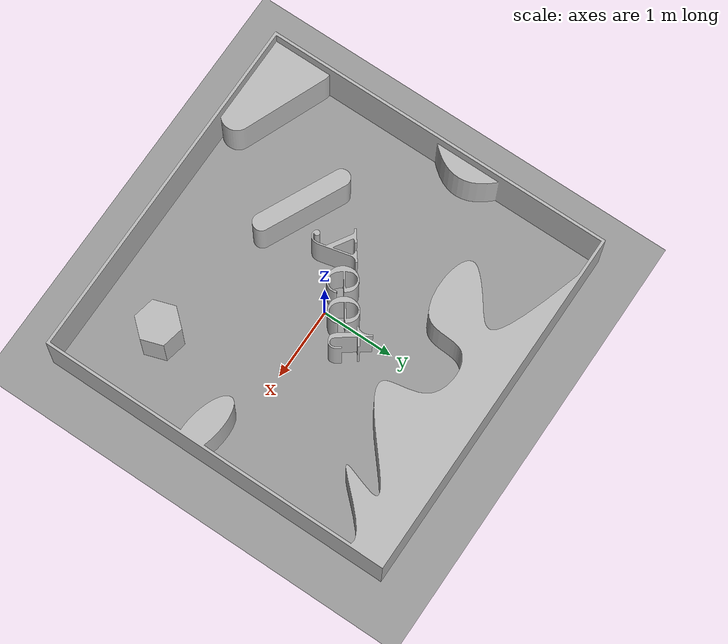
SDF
<sdf version="1.4">
 <world name="default">
  <light name="sun" type="directional">
   <pose>0 0 10 0 -0 0</pose>
   <diffuse>0.8 0.8 0.8 1</diffuse>
   <specular>0.2 0.2 0.2 1</specular>
   <attenuation>
    <range>1000</range>
    <constant>0.9</constant>
    <linear>0.01</linear>
    <quadratic>0.001</quadratic>
   </attenuation>
   <direction>0.5 0.1 -0.9</direction>
  </light>
  <scene><ambient>0.4 0.4 0.4 1</ambient><background>0.7 0.7 0.7 1</background><shadows>1</shadows></scene>
  <physics type="ode">
   <max_step_size>0.01</max_step_size>
   <real_time_factor>1</real_time_factor>
   <real_time_update_rate>100</real_time_update_rate>
   <gravity>0 0 -9.8</gravity>
  </physics>
  <model name="ground_plane_0">
   <static>1</static>
   <link name="link">
    <collision name="collision">
     <geometry><plane><normal>0 0 1</normal><size>100 100</size></plane></geometry>
     <surface><friction><ode><mu>1000</mu><mu2>500</mu2></ode></friction></surface>
    </collision>
    <visual name="visual">
     <cast_shadows>0</cast_shadows>
     <geometry><plane><normal>0 0 1</normal><size>100 100</size></plane></geometry>
     <material>
      <script><uri>file://media/materials/scripts/gazebo.material</uri><name>Gazebo/Grey</name></script>
     </material>
    </visual>
    <velocity_decay><linear>0</linear><angular>0</angular></velocity_decay>
   </link>
   <pose>0.497681 0 0 0 -0 0</pose>
  </model>
  <model name="MY580">
   <pose>-2.5 2.5 0  1.57079632679 0 0</pose>
   <static>true</static>
   <link name="body">
    <visual name="visual">
     <geometry><mesh><uri>file:///usr/share/gazebo/models/MY580V2.dae</uri></mesh></geometry>
    </visual>
    <collision name="collision">
     <geometry><mesh><uri>file:///usr/share/gazebo/models/MY580V2.dae</uri></mesh></geometry>
    </collision>
   </link>
  </model>
 </world>
</sdf>
